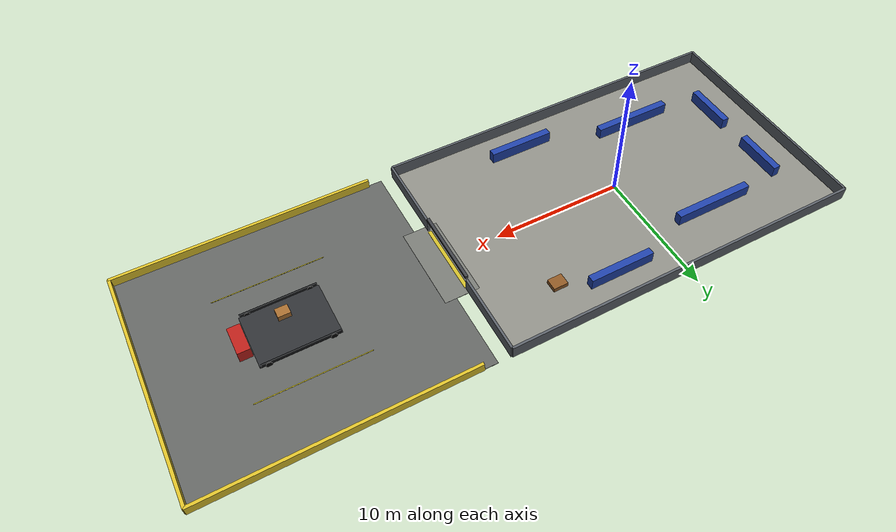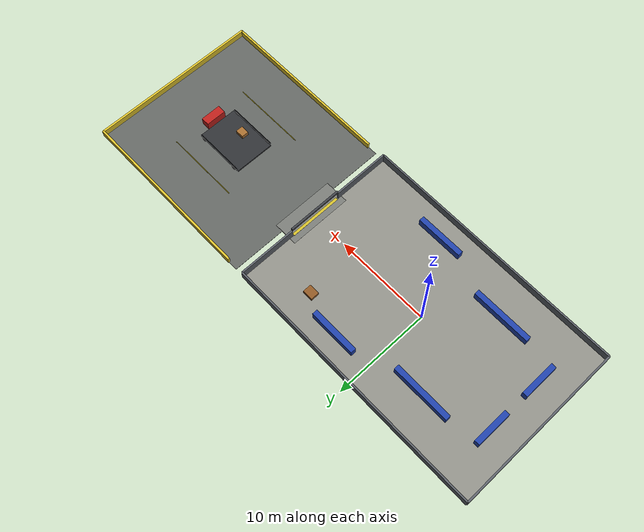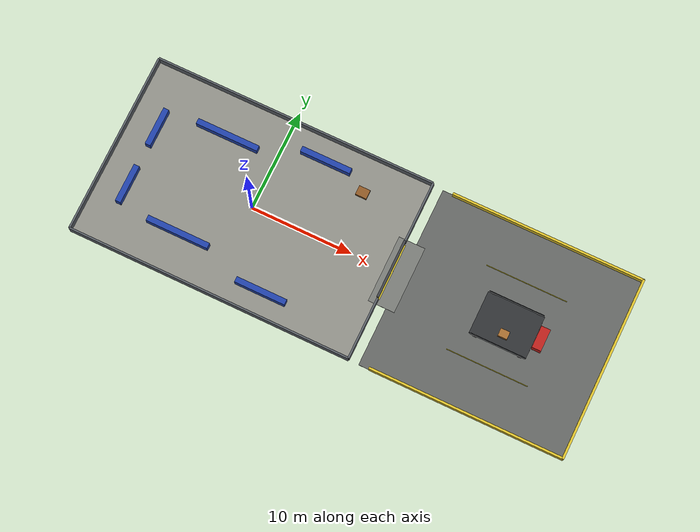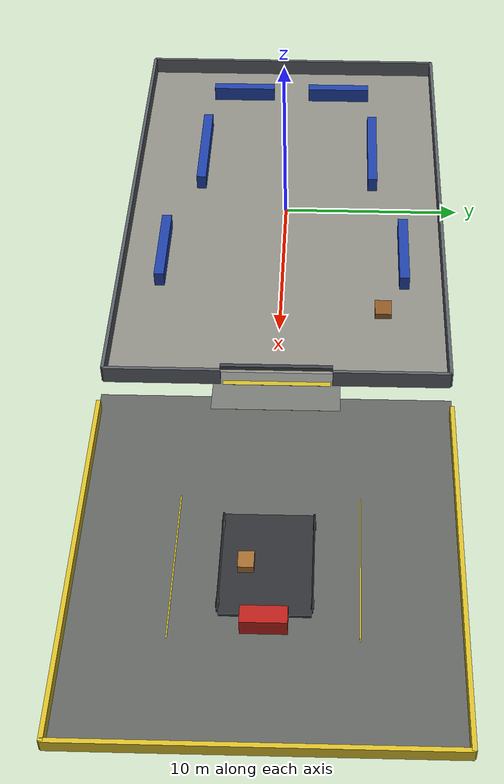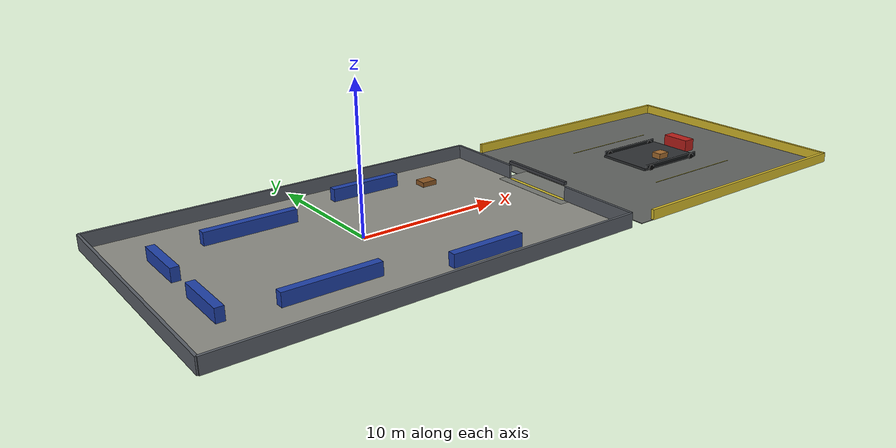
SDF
<?xml version="1.0"?>
<sdf version="1.6">
  <world name="forklift_factory_loading_demo">
    <plugin name="gazebo_ros_state" filename="libgazebo_ros_state.so">
      <update_rate>10.0</update_rate>
    </plugin>

    <scene>
      <ambient>0.48 0.48 0.48 1.0</ambient>
      <background>0.70 0.78 0.86 1.0</background>
      <shadows>true</shadows>
    </scene>

    <physics name="default_physics" type="ode">
      <real_time_update_rate>1000</real_time_update_rate>
      <max_step_size>0.001</max_step_size>
    </physics>

    <light name="sun" type="directional">
      <cast_shadows>true</cast_shadows>
      <pose>0 0 10 0 0 0</pose>
      <diffuse>0.82 0.82 0.82 1</diffuse>
      <specular>0.20 0.20 0.20 1</specular>
      <attenuation>
        <range>1000</range>
        <constant>0.9</constant>
        <linear>0.01</linear>
        <quadratic>0.001</quadratic>
      </attenuation>
      <direction>-0.45 0.15 -0.88</direction>
    </light>

    <model name="factory_floor">
      <static>true</static>
      <link name="link">
        <collision name="collision">
          <geometry><box><size>28 18 0.04</size></box></geometry>
        </collision>
        <visual name="visual">
          <geometry><box><size>28 18 0.04</size></box></geometry>
          <material>
            <ambient>0.55 0.55 0.52 1</ambient>
            <diffuse>0.55 0.55 0.52 1</diffuse>
          </material>
        </visual>
      </link>
    </model>

    <model name="outside_yard">
      <static>true</static>
      <pose>25.0 0 -0.002 0 0 0</pose>
      <link name="link">
        <collision name="collision">
          <geometry><box><size>20.0 18.0 0.04</size></box></geometry>
        </collision>
        <visual name="visual">
          <geometry><box><size>20.0 18.0 0.04</size></box></geometry>
          <material>
            <ambient>0.38 0.39 0.38 1</ambient>
            <diffuse>0.38 0.39 0.38 1</diffuse>
          </material>
        </visual>
      </link>
    </model>

    <model name="door_yard_connector_floor">
      <static>true</static>
      <pose>14.55 0 0.001 0 0 0</pose>
      <link name="link">
        <collision name="collision">
          <geometry><box><size>2.6 6.6 0.04</size></box></geometry>
        </collision>
        <visual name="visual">
          <geometry><box><size>2.6 6.6 0.04</size></box></geometry>
          <material>
            <ambient>0.46 0.47 0.45 1</ambient>
            <diffuse>0.46 0.47 0.45 1</diffuse>
          </material>
        </visual>
      </link>
    </model>

    <model name="yard_north_guardrail">
      <static>true</static>
      <pose>25.5 8.95 0.35 0 0 0</pose>
      <link name="link">
        <collision name="collision">
          <geometry><box><size>19.0 0.22 0.70</size></box></geometry>
        </collision>
        <visual name="visual">
          <geometry><box><size>19.0 0.22 0.70</size></box></geometry>
          <material>
            <ambient>0.85 0.74 0.16 1</ambient>
            <diffuse>0.85 0.74 0.16 1</diffuse>
          </material>
        </visual>
      </link>
    </model>

    <model name="yard_south_guardrail">
      <static>true</static>
      <pose>25.5 -8.95 0.35 0 0 0</pose>
      <link name="link">
        <collision name="collision">
          <geometry><box><size>19.0 0.22 0.70</size></box></geometry>
        </collision>
        <visual name="visual">
          <geometry><box><size>19.0 0.22 0.70</size></box></geometry>
          <material>
            <ambient>0.85 0.74 0.16 1</ambient>
            <diffuse>0.85 0.74 0.16 1</diffuse>
          </material>
        </visual>
      </link>
    </model>

    <model name="yard_east_guardrail">
      <static>true</static>
      <pose>34.95 0 0.35 0 0 0</pose>
      <link name="link">
        <collision name="collision">
          <geometry><box><size>0.22 18.0 0.70</size></box></geometry>
        </collision>
        <visual name="visual">
          <geometry><box><size>0.22 18.0 0.70</size></box></geometry>
          <material>
            <ambient>0.85 0.74 0.16 1</ambient>
            <diffuse>0.85 0.74 0.16 1</diffuse>
          </material>
        </visual>
      </link>
    </model>

    <model name="north_wall">
      <static>true</static>
      <pose>0 9 0.5 0 0 0</pose>
      <link name="link">
        <collision name="collision">
          <geometry><box><size>28 0.18 1.0</size></box></geometry>
        </collision>
        <visual name="visual">
          <geometry><box><size>28 0.18 1.0</size></box></geometry>
          <material>
            <ambient>0.35 0.37 0.40 1</ambient>
            <diffuse>0.35 0.37 0.40 1</diffuse>
          </material>
        </visual>
      </link>
    </model>

    <model name="south_wall">
      <static>true</static>
      <pose>0 -9 0.5 0 0 0</pose>
      <link name="link">
        <collision name="collision">
          <geometry><box><size>28 0.18 1.0</size></box></geometry>
        </collision>
        <visual name="visual">
          <geometry><box><size>28 0.18 1.0</size></box></geometry>
          <material>
            <ambient>0.35 0.37 0.40 1</ambient>
            <diffuse>0.35 0.37 0.40 1</diffuse>
          </material>
        </visual>
      </link>
    </model>

    <model name="west_wall">
      <static>true</static>
      <pose>-14 0 0.5 0 0 0</pose>
      <link name="link">
        <collision name="collision">
          <geometry><box><size>0.18 18 1.0</size></box></geometry>
        </collision>
        <visual name="visual">
          <geometry><box><size>0.18 18 1.0</size></box></geometry>
          <material>
            <ambient>0.35 0.37 0.40 1</ambient>
            <diffuse>0.35 0.37 0.40 1</diffuse>
          </material>
        </visual>
      </link>
    </model>

    <model name="east_wall_north_of_door">
      <static>true</static>
      <pose>14 5.95 0.5 0 0 0</pose>
      <link name="link">
        <collision name="collision">
          <geometry><box><size>0.18 6.1 1.0</size></box></geometry>
        </collision>
        <visual name="visual">
          <geometry><box><size>0.18 6.1 1.0</size></box></geometry>
          <material>
            <ambient>0.35 0.37 0.40 1</ambient>
            <diffuse>0.35 0.37 0.40 1</diffuse>
          </material>
        </visual>
      </link>
    </model>

    <model name="east_wall_south_of_door">
      <static>true</static>
      <pose>14 -5.95 0.5 0 0 0</pose>
      <link name="link">
        <collision name="collision">
          <geometry><box><size>0.18 6.1 1.0</size></box></geometry>
        </collision>
        <visual name="visual">
          <geometry><box><size>0.18 6.1 1.0</size></box></geometry>
          <material>
            <ambient>0.35 0.37 0.40 1</ambient>
            <diffuse>0.35 0.37 0.40 1</diffuse>
          </material>
        </visual>
      </link>
    </model>

    <model name="door_header">
      <static>true</static>
      <pose>14 0 1.22 0 0 0</pose>
      <link name="link">
        <collision name="collision">
          <geometry><box><size>0.22 5.8 0.22</size></box></geometry>
        </collision>
        <visual name="visual">
          <geometry><box><size>0.22 5.8 0.22</size></box></geometry>
          <material>
            <ambient>0.24 0.25 0.27 1</ambient>
            <diffuse>0.24 0.25 0.27 1</diffuse>
          </material>
        </visual>
      </link>
    </model>

    <model name="door_threshold">
      <static>true</static>
      <pose>14 0 0.012 0 0 0</pose>
      <link name="link">
        <collision name="collision">
          <geometry><box><size>0.28 5.6 0.025</size></box></geometry>
        </collision>
        <visual name="visual">
          <geometry><box><size>0.28 5.6 0.025</size></box></geometry>
          <material>
            <ambient>0.80 0.72 0.16 1</ambient>
            <diffuse>0.80 0.72 0.16 1</diffuse>
          </material>
        </visual>
      </link>
    </model>

    <model name="flatbed_truck_deck">
      <static>true</static>
      <pose>25.5 0 0.11 0 0 0</pose>
      <link name="link">
        <collision name="collision">
          <geometry><box><size>5.6 4.2 0.18</size></box></geometry>
        </collision>
        <visual name="visual">
          <geometry><box><size>5.6 4.2 0.18</size></box></geometry>
          <material>
            <ambient>0.18 0.19 0.20 1</ambient>
            <diffuse>0.18 0.19 0.20 1</diffuse>
          </material>
        </visual>
      </link>
    </model>

    <model name="flatbed_truck_north_rail">
      <static>true</static>
      <pose>25.5 2.14 0.32 0 0 0</pose>
      <link name="link">
        <collision name="collision">
          <geometry><box><size>5.4 0.08 0.26</size></box></geometry>
        </collision>
        <visual name="visual">
          <geometry><box><size>5.4 0.08 0.26</size></box></geometry>
          <material>
            <ambient>0.08 0.09 0.10 1</ambient>
            <diffuse>0.08 0.09 0.10 1</diffuse>
          </material>
        </visual>
      </link>
    </model>

    <model name="flatbed_truck_south_rail">
      <static>true</static>
      <pose>25.5 -2.14 0.32 0 0 0</pose>
      <link name="link">
        <collision name="collision">
          <geometry><box><size>5.4 0.08 0.26</size></box></geometry>
        </collision>
        <visual name="visual">
          <geometry><box><size>5.4 0.08 0.26</size></box></geometry>
          <material>
            <ambient>0.08 0.09 0.10 1</ambient>
            <diffuse>0.08 0.09 0.10 1</diffuse>
          </material>
        </visual>
      </link>
    </model>

    <model name="flatbed_truck_cab">
      <static>true</static>
      <pose>28.8 0 0.55 0 0 0</pose>
      <link name="link">
        <collision name="collision">
          <geometry><box><size>0.9 2.15 0.9</size></box></geometry>
        </collision>
        <visual name="visual">
          <geometry><box><size>0.9 2.15 0.9</size></box></geometry>
          <material>
            <ambient>0.72 0.12 0.10 1</ambient>
            <diffuse>0.72 0.12 0.10 1</diffuse>
          </material>
        </visual>
      </link>
    </model>

    <model name="yard_north_safety_line">
      <static>true</static>
      <pose>25.5 4.3 0.022 0 0 0</pose>
      <link name="link">
        <visual name="visual">
          <geometry><box><size>8.0 0.06 0.006</size></box></geometry>
          <material>
            <ambient>0.85 0.78 0.10 1</ambient>
            <diffuse>0.85 0.78 0.10 1</diffuse>
          </material>
        </visual>
      </link>
    </model>

    <model name="yard_south_safety_line">
      <static>true</static>
      <pose>25.5 -4.3 0.022 0 0 0</pose>
      <link name="link">
        <visual name="visual">
          <geometry><box><size>8.0 0.06 0.006</size></box></geometry>
          <material>
            <ambient>0.85 0.78 0.10 1</ambient>
            <diffuse>0.85 0.78 0.10 1</diffuse>
          </material>
        </visual>
      </link>
    </model>

    <model name="truck_front_left_wheel">
      <static>true</static>
      <pose>27.7 2.14 0.18 1.5708 0 0</pose>
      <link name="link">
        <collision name="collision">
          <geometry><cylinder><radius>0.22</radius><length>0.16</length></cylinder></geometry>
        </collision>
        <visual name="visual">
          <geometry><cylinder><radius>0.22</radius><length>0.16</length></cylinder></geometry>
          <material>
            <ambient>0.02 0.02 0.02 1</ambient>
            <diffuse>0.02 0.02 0.02 1</diffuse>
          </material>
        </visual>
      </link>
    </model>

    <model name="truck_front_right_wheel">
      <static>true</static>
      <pose>27.7 -2.14 0.18 1.5708 0 0</pose>
      <link name="link">
        <collision name="collision">
          <geometry><cylinder><radius>0.22</radius><length>0.16</length></cylinder></geometry>
        </collision>
        <visual name="visual">
          <geometry><cylinder><radius>0.22</radius><length>0.16</length></cylinder></geometry>
          <material>
            <ambient>0.02 0.02 0.02 1</ambient>
            <diffuse>0.02 0.02 0.02 1</diffuse>
          </material>
        </visual>
      </link>
    </model>

    <model name="truck_rear_left_wheel">
      <static>true</static>
      <pose>23.3 2.14 0.18 1.5708 0 0</pose>
      <link name="link">
        <collision name="collision">
          <geometry><cylinder><radius>0.22</radius><length>0.16</length></cylinder></geometry>
        </collision>
        <visual name="visual">
          <geometry><cylinder><radius>0.22</radius><length>0.16</length></cylinder></geometry>
          <material>
            <ambient>0.02 0.02 0.02 1</ambient>
            <diffuse>0.02 0.02 0.02 1</diffuse>
          </material>
        </visual>
      </link>
    </model>

    <model name="truck_rear_right_wheel">
      <static>true</static>
      <pose>23.3 -2.14 0.18 1.5708 0 0</pose>
      <link name="link">
        <collision name="collision">
          <geometry><cylinder><radius>0.22</radius><length>0.16</length></cylinder></geometry>
        </collision>
        <visual name="visual">
          <geometry><cylinder><radius>0.22</radius><length>0.16</length></cylinder></geometry>
          <material>
            <ambient>0.02 0.02 0.02 1</ambient>
            <diffuse>0.02 0.02 0.02 1</diffuse>
          </material>
        </visual>
      </link>
    </model>

    <model name="rack_left">
      <static>true</static>
      <pose>-5.0 5.1 0.45 0 0 0</pose>
      <link name="link">
        <collision name="collision">
          <geometry><box><size>6.2 0.55 0.9</size></box></geometry>
        </collision>
        <visual name="visual">
          <geometry><box><size>6.2 0.55 0.9</size></box></geometry>
          <material>
            <ambient>0.12 0.25 0.65 1</ambient>
            <diffuse>0.12 0.25 0.65 1</diffuse>
          </material>
        </visual>
      </link>
    </model>

    <model name="rack_right">
      <static>true</static>
      <pose>-5.0 -5.1 0.45 0 0 0</pose>
      <link name="link">
        <collision name="collision">
          <geometry><box><size>6.2 0.55 0.9</size></box></geometry>
        </collision>
        <visual name="visual">
          <geometry><box><size>6.2 0.55 0.9</size></box></geometry>
          <material>
            <ambient>0.12 0.25 0.65 1</ambient>
            <diffuse>0.12 0.25 0.65 1</diffuse>
          </material>
        </visual>
      </link>
    </model>

    <model name="rack_north_center">
      <static>true</static>
      <pose>4.2 6.8 0.45 0 0 0</pose>
      <link name="link">
        <collision name="collision">
          <geometry><box><size>5.0 0.55 0.9</size></box></geometry>
        </collision>
        <visual name="visual">
          <geometry><box><size>5.0 0.55 0.9</size></box></geometry>
          <material>
            <ambient>0.12 0.25 0.65 1</ambient>
            <diffuse>0.12 0.25 0.65 1</diffuse>
          </material>
        </visual>
      </link>
    </model>

    <model name="rack_south_center">
      <static>true</static>
      <pose>4.2 -6.8 0.45 0 0 0</pose>
      <link name="link">
        <collision name="collision">
          <geometry><box><size>5.0 0.55 0.9</size></box></geometry>
        </collision>
        <visual name="visual">
          <geometry><box><size>5.0 0.55 0.9</size></box></geometry>
          <material>
            <ambient>0.12 0.25 0.65 1</ambient>
            <diffuse>0.12 0.25 0.65 1</diffuse>
          </material>
        </visual>
      </link>
    </model>

    <model name="rack_west_north_column">
      <static>true</static>
      <pose>-11.2 3.0 0.45 0 0 0</pose>
      <link name="link">
        <collision name="collision">
          <geometry><box><size>0.55 3.8 0.9</size></box></geometry>
        </collision>
        <visual name="visual">
          <geometry><box><size>0.55 3.8 0.9</size></box></geometry>
          <material>
            <ambient>0.12 0.25 0.65 1</ambient>
            <diffuse>0.12 0.25 0.65 1</diffuse>
          </material>
        </visual>
      </link>
    </model>

    <model name="rack_west_south_column">
      <static>true</static>
      <pose>-11.2 -3.0 0.45 0 0 0</pose>
      <link name="link">
        <collision name="collision">
          <geometry><box><size>0.55 3.8 0.9</size></box></geometry>
        </collision>
        <visual name="visual">
          <geometry><box><size>0.55 3.8 0.9</size></box></geometry>
          <material>
            <ambient>0.12 0.25 0.65 1</ambient>
            <diffuse>0.12 0.25 0.65 1</diffuse>
          </material>
        </visual>
      </link>
    </model>

    <model name="staging_pallet_inside">
      <static>true</static>
      <pose>8.5 5.6 0.18 0 0 0</pose>
      <link name="link">
        <collision name="collision">
          <geometry><box><size>1.1 0.9 0.36</size></box></geometry>
        </collision>
        <visual name="visual">
          <geometry><box><size>1.1 0.9 0.36</size></box></geometry>
          <material>
            <ambient>0.55 0.34 0.14 1</ambient>
            <diffuse>0.55 0.34 0.14 1</diffuse>
          </material>
        </visual>
      </link>
    </model>

    <model name="cargo_on_flatbed">
      <static>true</static>
      <pose>25.6 -0.95 0.42 0 0 0</pose>
      <link name="link">
        <collision name="collision">
          <geometry><box><size>0.9 0.75 0.42</size></box></geometry>
        </collision>
        <visual name="visual">
          <geometry><box><size>0.9 0.75 0.42</size></box></geometry>
          <material>
            <ambient>0.64 0.42 0.18 1</ambient>
            <diffuse>0.64 0.42 0.18 1</diffuse>
          </material>
        </visual>
      </link>
    </model>
  </world>
</sdf>
